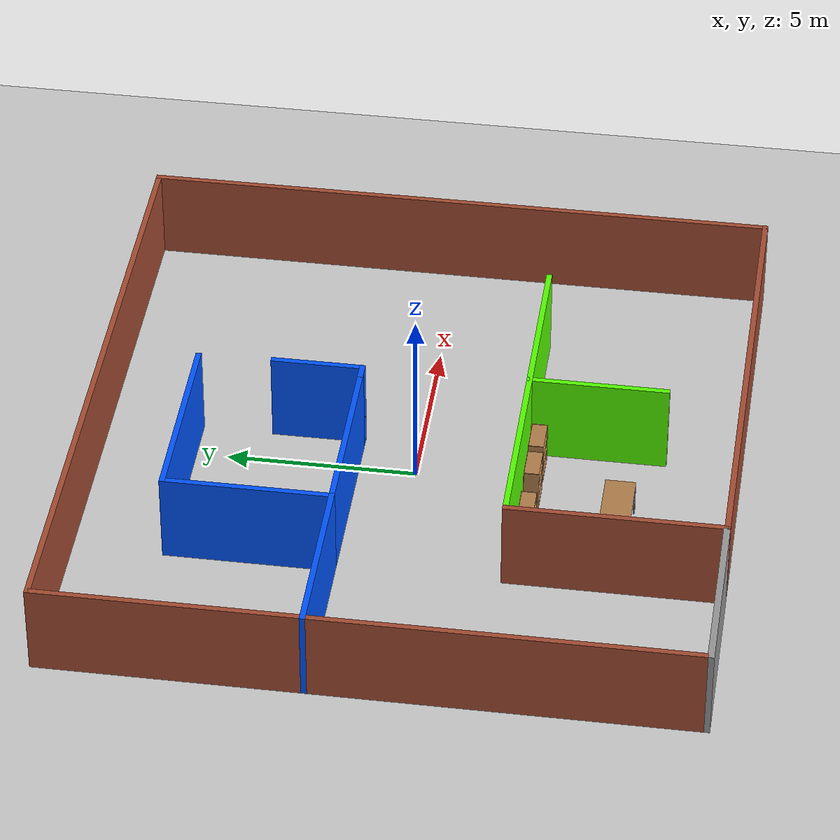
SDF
<sdf version="1.6">
 <world name="default">
  <model name="ground_plane">
   <static>1</static>
   <link name="link">
    <collision name="collision">
     <geometry><plane><normal>0 0 1</normal><size>100 100</size></plane></geometry>
     <surface><friction><ode><mu>100</mu><mu2>50</mu2></ode></friction></surface>
    </collision>
    <visual name="visual">
     <cast_shadows>0</cast_shadows>
     <geometry><plane><normal>0 0 1</normal><size>100 100</size></plane></geometry>
     <material>
      <script><uri>file://media/materials/scripts/gazebo.material</uri><name>Gazebo/Grey</name></script>
     </material>
    </visual>
   </link>
  </model>
  <model name="my_building">
   <pose>0.06133 -0.00347 0 0 -0 0</pose>
   <link name="Door_1">
    <collision name="Door_1_Collision">
     <geometry><box><size>4.8 0.17 2.5</size></box></geometry>
     <pose>0 0 1.25 0 -0 0</pose>
    </collision>
    <visual name="Door_1_Visual">
     <pose>0 0 1.25 0 -0 0</pose>
     <geometry><box><size>4.8 0.17 2.5</size></box></geometry>
     <material>
      <script><uri>file://media/materials/scripts/gazebo.material</uri><name>Gazebo/Grey</name></script>
     </material>
    </visual>
    <pose>-6.34787 -8.415 0 0 -0 0</pose>
   </link>
   <link name="Wall_13">
    <collision name="Wall_13_Collision">
     <geometry><box><size>4.75 0.15 2.5</size></box></geometry>
     <pose>0 0 1.25 0 -0 0</pose>
    </collision>
    <visual name="Wall_13_Visual">
     <pose>0 0 1.25 0 -0 0</pose>
     <geometry><box><size>4.75 0.15 2.5</size></box></geometry>
     <material>
      <script><uri>file://media/materials/scripts/gazebo.material</uri><name>Gazebo/Grey</name></script>
      <ambient>0 0.333333 1 1</ambient>
     </material>
     <meta><layer>0</layer></meta>
    </visual>
    <pose>-6.375 1.575 0 0 -0 3.14159</pose>
   </link>
   <link name="Wall_14">
    <collision name="Wall_14_Collision">
     <geometry><box><size>7 0.15 2.5</size></box></geometry>
     <pose>0 0 1.25 0 -0 0</pose>
    </collision>
    <visual name="Wall_14_Visual">
     <pose>0 0 1.25 0 -0 0</pose>
     <geometry><box><size>7 0.15 2.5</size></box></geometry>
     <material>
      <script><uri>file://media/materials/scripts/gazebo.material</uri><name>Gazebo/Bricks</name></script>
      <ambient>1 1 1 1</ambient>
     </material>
     <meta><layer>0</layer></meta>
    </visual>
    <pose>-8.675 5 0 0 -0 1.5708</pose>
   </link>
   <link name="Wall_15">
    <collision name="Wall_15_Collision">
     <geometry><box><size>17.5 0.15 2.5</size></box></geometry>
     <pose>0 0 1.25 0 -0 0</pose>
    </collision>
    <visual name="Wall_15_Visual">
     <pose>0 0 1.25 0 -0 0</pose>
     <geometry><box><size>17.5 0.15 2.5</size></box></geometry>
     <material>
      <script><uri>file://media/materials/scripts/gazebo.material</uri><name>Gazebo/Bricks</name></script>
      <ambient>1 1 1 1</ambient>
     </material>
     <meta><layer>0</layer></meta>
    </visual>
    <pose>0 8.425 0 0 -0 0</pose>
   </link>
   <link name="Wall_21">
    <collision name="Wall_21_Collision">
     <geometry><box><size>17 0.15 2.5</size></box></geometry>
     <pose>0 0 1.25 0 -0 0</pose>
    </collision>
    <visual name="Wall_21_Visual">
     <pose>0 0 1.25 0 -0 0</pose>
     <geometry><box><size>17 0.15 2.5</size></box></geometry>
     <material>
      <script><uri>file://media/materials/scripts/gazebo.material</uri><name>Gazebo/Bricks</name></script>
      <ambient>1 1 1 1</ambient>
     </material>
     <meta><layer>0</layer></meta>
    </visual>
    <pose>8.675 0 0 0 0 -1.5708</pose>
   </link>
   <link name="Wall_24">
    <collision name="Wall_24_Collision">
     <geometry><box><size>12.75 0.15 2.5</size></box></geometry>
     <pose>0 0 1.25 0 -0 0</pose>
    </collision>
    <visual name="Wall_24_Visual">
     <pose>0 0 1.25 0 -0 0</pose>
     <geometry><box><size>12.75 0.15 2.5</size></box></geometry>
     <material>
      <script><uri>file://media/materials/scripts/gazebo.material</uri><name>Gazebo/Bricks</name></script>
      <ambient>1 1 1 1</ambient>
     </material>
     <meta><layer>0</layer></meta>
    </visual>
    <pose>2.375 -8.425 0 0 -0 3.14159</pose>
   </link>
   <link name="Wall_25">
    <collision name="Wall_25_Collision">
     <geometry><box><size>5.75 0.15 2.5</size></box></geometry>
     <pose>0 0 1.25 0 -0 0</pose>
    </collision>
    <visual name="Wall_25_Visual">
     <pose>0 0 1.25 0 -0 0</pose>
     <geometry><box><size>5.75 0.15 2.5</size></box></geometry>
     <material>
      <script><uri>file://media/materials/scripts/gazebo.material</uri><name>Gazebo/Bricks</name></script>
      <ambient>1 1 1 1</ambient>
     </material>
     <meta><layer>0</layer></meta>
    </visual>
    <pose>-3.925 -5.625 0 0 -0 1.5708</pose>
   </link>
   <link name="Wall_26">
    <collision name="Wall_26_Collision">
     <geometry><box><size>9.75 0.15 2.5</size></box></geometry>
     <pose>0 0 1.25 0 -0 0</pose>
    </collision>
    <visual name="Wall_26_Visual">
     <pose>0 0 1.25 0 -0 0</pose>
     <geometry><box><size>9.75 0.15 2.5</size></box></geometry>
     <material>
      <script><uri>file://media/materials/scripts/gazebo.material</uri><name>Gazebo/Grey</name></script>
      <ambient>0.333333 1 0 1</ambient>
     </material>
     <meta><layer>0</layer></meta>
    </visual>
    <pose>0.875 -2.825 0 0 -0 0</pose>
   </link>
   <link name="Wall_30">
    <collision name="Wall_30_Collision">
     <geometry><box><size>4.5 0.15 2.5</size></box></geometry>
     <pose>0 0 1.25 0 -0 0</pose>
    </collision>
    <visual name="Wall_30_Visual">
     <pose>0 0 1.25 0 -0 0</pose>
     <geometry><box><size>4.5 0.15 2.5</size></box></geometry>
     <material>
      <script><uri>file://media/materials/scripts/gazebo.material</uri><name>Gazebo/Grey</name></script>
      <ambient>0 0.333333 1 1</ambient>
     </material>
     <meta><layer>0</layer></meta>
    </visual>
    <pose>-4.075 3.75 0 0 -0 1.5708</pose>
   </link>
   <link name="Wall_31">
    <collision name="Wall_31_Collision">
     <geometry><box><size>5.25 0.15 2.5</size></box></geometry>
     <pose>0 0 1.25 0 -0 0</pose>
    </collision>
    <visual name="Wall_31_Visual">
     <pose>0 0 1.25 0 -0 0</pose>
     <geometry><box><size>5.25 0.15 2.5</size></box></geometry>
     <material>
      <script><uri>file://media/materials/scripts/gazebo.material</uri><name>Gazebo/Grey</name></script>
      <ambient>0 0.333333 1 1</ambient>
     </material>
     <meta><layer>0</layer></meta>
    </visual>
    <pose>-1.525 5.925 0 0 -0 0</pose>
   </link>
   <link name="Wall_33">
    <collision name="Wall_33_Collision">
     <geometry><box><size>5 0.15 2.5</size></box></geometry>
     <pose>0 0 1.25 0 -0 0</pose>
    </collision>
    <visual name="Wall_33_Visual">
     <pose>0 0 1.25 0 -0 0</pose>
     <geometry><box><size>5 0.15 2.5</size></box></geometry>
     <material>
      <script><uri>file://media/materials/scripts/gazebo.material</uri><name>Gazebo/Grey</name></script>
      <ambient>0 0.333333 1 1</ambient>
     </material>
     <meta><layer>0</layer></meta>
    </visual>
    <pose>-1.65 1.575 0 0 -0 0</pose>
   </link>
   <link name="Wall_34">
    <collision name="Wall_34_Collision">
     <geometry><box><size>0.5 0.15 2.5</size></box></geometry>
     <pose>0 0 1.25 0 -0 0</pose>
    </collision>
    <visual name="Wall_34_Visual">
     <pose>0 0 1.25 0 -0 0</pose>
     <geometry><box><size>0.5 0.15 2.5</size></box></geometry>
     <material>
      <script><uri>file://media/materials/scripts/gazebo.material</uri><name>Gazebo/Grey</name></script>
      <ambient>0 0.333333 1 1</ambient>
     </material>
     <meta><layer>0</layer></meta>
    </visual>
    <pose>0.95 1.575 0 0 -0 0</pose>
   </link>
   <link name="Wall_35">
    <collision name="Wall_35_Collision">
     <geometry><box><size>2.5 0.15 2.5</size></box></geometry>
     <pose>0 0 1.25 0 -0 0</pose>
    </collision>
    <visual name="Wall_35_Visual">
     <pose>0 0 1.25 0 -0 0</pose>
     <geometry><box><size>2.5 0.15 2.5</size></box></geometry>
     <material>
      <script><uri>file://media/materials/scripts/gazebo.material</uri><name>Gazebo/Grey</name></script>
      <ambient>0 0.333333 1 1</ambient>
     </material>
     <meta><layer>0</layer></meta>
    </visual>
    <pose>1.125 2.75 0 0 -0 1.5708</pose>
   </link>
   <link name="Wall_37">
    <collision name="Wall_37_Collision">
     <geometry><box><size>10 0.15 2.5</size></box></geometry>
     <pose>0 0 1.25 0 -0 0</pose>
    </collision>
    <visual name="Wall_37_Visual">
     <pose>0 0 1.25 0 -0 0</pose>
     <geometry><box><size>10 0.15 2.5</size></box></geometry>
     <material>
      <script><uri>file://media/materials/scripts/gazebo.material</uri><name>Gazebo/Bricks</name></script>
      <ambient>1 1 1 1</ambient>
     </material>
     <meta><layer>0</layer></meta>
    </visual>
    <pose>-8.675 -3.35 0 0 0 -1.5708</pose>
   </link>
   <link name="Wall_39">
    <collision name="Wall_39_Collision">
     <geometry><box><size>3.75 0.15 2.5</size></box></geometry>
     <pose>0 0 1.25 0 -0 0</pose>
    </collision>
    <visual name="Wall_39_Visual">
     <pose>0 0 1.25 0 -0 0</pose>
     <geometry><box><size>3.75 0.15 2.5</size></box></geometry>
     <material>
      <script><uri>file://media/materials/scripts/gazebo.material</uri><name>Gazebo/Grey</name></script>
      <ambient>0.333333 1 0 1</ambient>
     </material>
     <meta><layer>0</layer></meta>
    </visual>
    <pose>1.24076 -4.62607 0 0 0 -1.5708</pose>
   </link>
   <static>1</static>
  </model>
  <model name="bookshelf">
   <static>1</static>
   <link name="link">
    <inertial><mass>1</mass></inertial>
    <collision name="back">
     <pose>0 0.005 0.6 0 -0 0</pose>
     <geometry><box><size>0.9 0.01 1.2</size></box></geometry>
    </collision>
    <visual name="visual1">
     <pose>0 0.005 0.6 0 -0 0</pose>
     <geometry><box><size>0.9 0.01 1.2</size></box></geometry>
     <material>
      <script><uri>file://media/materials/scripts/gazebo.material</uri><name>Gazebo/Wood</name></script>
     </material>
    </visual>
    <collision name="left_side">
     <pose>0.45 -0.195 0.6 0 -0 0</pose>
     <geometry><box><size>0.02 0.4 1.2</size></box></geometry>
    </collision>
    <visual name="visual2">
     <pose>0.45 -0.195 0.6 0 -0 0</pose>
     <geometry><box><size>0.02 0.4 1.2</size></box></geometry>
     <material>
      <script><uri>file://media/materials/scripts/gazebo.material</uri><name>Gazebo/Wood</name></script>
     </material>
    </visual>
    <collision name="right_side">
     <pose>-0.45 -0.195 0.6 0 -0 0</pose>
     <geometry><box><size>0.02 0.4 1.2</size></box></geometry>
    </collision>
    <visual name="visual3">
     <pose>-0.45 -0.195 0.6 0 -0 0</pose>
     <geometry><box><size>0.02 0.4 1.2</size></box></geometry>
     <material>
      <script><uri>file://media/materials/scripts/gazebo.material</uri><name>Gazebo/Wood</name></script>
     </material>
    </visual>
    <collision name="bottom">
     <pose>0 -0.195 0.03 0 -0 0</pose>
     <geometry><box><size>0.88 0.4 0.06</size></box></geometry>
    </collision>
    <visual name="visual4">
     <pose>0 -0.195 0.03 0 -0 0</pose>
     <geometry><box><size>0.88 0.4 0.06</size></box></geometry>
     <material>
      <script><uri>file://media/materials/scripts/gazebo.material</uri><name>Gazebo/Wood</name></script>
     </material>
    </visual>
    <collision name="top">
     <pose>0 -0.195 1.19 0 -0 0</pose>
     <geometry><box><size>0.88 0.4 0.02</size></box></geometry>
    </collision>
    <visual name="visual5">
     <pose>0 -0.195 1.19 0 -0 0</pose>
     <geometry><box><size>0.88 0.4 0.02</size></box></geometry>
     <material>
      <script><uri>file://media/materials/scripts/gazebo.material</uri><name>Gazebo/Wood</name></script>
     </material>
    </visual>
    <collision name="low_shelf">
     <pose>0 -0.195 0.43 0 -0 0</pose>
     <geometry><box><size>0.88 0.4 0.02</size></box></geometry>
    </collision>
    <visual name="visual6">
     <pose>0 -0.195 0.43 0 -0 0</pose>
     <geometry><box><size>0.88 0.4 0.02</size></box></geometry>
     <material>
      <script><uri>file://media/materials/scripts/gazebo.material</uri><name>Gazebo/Wood</name></script>
     </material>
    </visual>
    <collision name="high_shelf">
     <pose>0 -0.195 0.8 0 -0 0</pose>
     <geometry><box><size>0.88 0.4 0.02</size></box></geometry>
    </collision>
    <visual name="visual7">
     <pose>0 -0.195 0.8 0 -0 0</pose>
     <geometry><box><size>0.88 0.4 0.02</size></box></geometry>
     <material>
      <script><uri>file://media/materials/scripts/gazebo.material</uri><name>Gazebo/Wood</name></script>
     </material>
    </visual>
   </link>
   <pose>-3.20385 -2.9972 0 0 -0 0</pose>
  </model>
  <model name="bookshelf_clone">
   <static>1</static>
   <link name="link">
    <inertial><mass>1</mass></inertial>
    <collision name="back">
     <pose>0 0.005 0.6 0 -0 0</pose>
     <geometry><box><size>0.9 0.01 1.2</size></box></geometry>
    </collision>
    <visual name="visual1">
     <pose>0 0.005 0.6 0 -0 0</pose>
     <geometry><box><size>0.9 0.01 1.2</size></box></geometry>
     <material>
      <script><uri>file://media/materials/scripts/gazebo.material</uri><name>Gazebo/Wood</name></script>
     </material>
    </visual>
    <collision name="left_side">
     <pose>0.45 -0.195 0.6 0 -0 0</pose>
     <geometry><box><size>0.02 0.4 1.2</size></box></geometry>
    </collision>
    <visual name="visual2">
     <pose>0.45 -0.195 0.6 0 -0 0</pose>
     <geometry><box><size>0.02 0.4 1.2</size></box></geometry>
     <material>
      <script><uri>file://media/materials/scripts/gazebo.material</uri><name>Gazebo/Wood</name></script>
     </material>
    </visual>
    <collision name="right_side">
     <pose>-0.45 -0.195 0.6 0 -0 0</pose>
     <geometry><box><size>0.02 0.4 1.2</size></box></geometry>
    </collision>
    <visual name="visual3">
     <pose>-0.45 -0.195 0.6 0 -0 0</pose>
     <geometry><box><size>0.02 0.4 1.2</size></box></geometry>
     <material>
      <script><uri>file://media/materials/scripts/gazebo.material</uri><name>Gazebo/Wood</name></script>
     </material>
    </visual>
    <collision name="bottom">
     <pose>0 -0.195 0.03 0 -0 0</pose>
     <geometry><box><size>0.88 0.4 0.06</size></box></geometry>
    </collision>
    <visual name="visual4">
     <pose>0 -0.195 0.03 0 -0 0</pose>
     <geometry><box><size>0.88 0.4 0.06</size></box></geometry>
     <material>
      <script><uri>file://media/materials/scripts/gazebo.material</uri><name>Gazebo/Wood</name></script>
     </material>
    </visual>
    <collision name="top">
     <pose>0 -0.195 1.19 0 -0 0</pose>
     <geometry><box><size>0.88 0.4 0.02</size></box></geometry>
    </collision>
    <visual name="visual5">
     <pose>0 -0.195 1.19 0 -0 0</pose>
     <geometry><box><size>0.88 0.4 0.02</size></box></geometry>
     <material>
      <script><uri>file://media/materials/scripts/gazebo.material</uri><name>Gazebo/Wood</name></script>
     </material>
    </visual>
    <collision name="low_shelf">
     <pose>0 -0.195 0.43 0 -0 0</pose>
     <geometry><box><size>0.88 0.4 0.02</size></box></geometry>
    </collision>
    <visual name="visual6">
     <pose>0 -0.195 0.43 0 -0 0</pose>
     <geometry><box><size>0.88 0.4 0.02</size></box></geometry>
     <material>
      <script><uri>file://media/materials/scripts/gazebo.material</uri><name>Gazebo/Wood</name></script>
     </material>
    </visual>
    <collision name="high_shelf">
     <pose>0 -0.195 0.8 0 -0 0</pose>
     <geometry><box><size>0.88 0.4 0.02</size></box></geometry>
    </collision>
    <visual name="visual7">
     <pose>0 -0.195 0.8 0 -0 0</pose>
     <geometry><box><size>0.88 0.4 0.02</size></box></geometry>
     <material>
      <script><uri>file://media/materials/scripts/gazebo.material</uri><name>Gazebo/Wood</name></script>
     </material>
    </visual>
   </link>
   <pose>-2.13806 -3.00313 0 0 -0 0</pose>
  </model>
  <model name="bookshelf_clone_0">
   <static>1</static>
   <link name="link">
    <inertial><mass>1</mass></inertial>
    <collision name="back">
     <pose>0 0.005 0.6 0 -0 0</pose>
     <geometry><box><size>0.9 0.01 1.2</size></box></geometry>
    </collision>
    <visual name="visual1">
     <pose>0 0.005 0.6 0 -0 0</pose>
     <geometry><box><size>0.9 0.01 1.2</size></box></geometry>
     <material>
      <script><uri>file://media/materials/scripts/gazebo.material</uri><name>Gazebo/Wood</name></script>
     </material>
    </visual>
    <collision name="left_side">
     <pose>0.45 -0.195 0.6 0 -0 0</pose>
     <geometry><box><size>0.02 0.4 1.2</size></box></geometry>
    </collision>
    <visual name="visual2">
     <pose>0.45 -0.195 0.6 0 -0 0</pose>
     <geometry><box><size>0.02 0.4 1.2</size></box></geometry>
     <material>
      <script><uri>file://media/materials/scripts/gazebo.material</uri><name>Gazebo/Wood</name></script>
     </material>
    </visual>
    <collision name="right_side">
     <pose>-0.45 -0.195 0.6 0 -0 0</pose>
     <geometry><box><size>0.02 0.4 1.2</size></box></geometry>
    </collision>
    <visual name="visual3">
     <pose>-0.45 -0.195 0.6 0 -0 0</pose>
     <geometry><box><size>0.02 0.4 1.2</size></box></geometry>
     <material>
      <script><uri>file://media/materials/scripts/gazebo.material</uri><name>Gazebo/Wood</name></script>
     </material>
    </visual>
    <collision name="bottom">
     <pose>0 -0.195 0.03 0 -0 0</pose>
     <geometry><box><size>0.88 0.4 0.06</size></box></geometry>
    </collision>
    <visual name="visual4">
     <pose>0 -0.195 0.03 0 -0 0</pose>
     <geometry><box><size>0.88 0.4 0.06</size></box></geometry>
     <material>
      <script><uri>file://media/materials/scripts/gazebo.material</uri><name>Gazebo/Wood</name></script>
     </material>
    </visual>
    <collision name="top">
     <pose>0 -0.195 1.19 0 -0 0</pose>
     <geometry><box><size>0.88 0.4 0.02</size></box></geometry>
    </collision>
    <visual name="visual5">
     <pose>0 -0.195 1.19 0 -0 0</pose>
     <geometry><box><size>0.88 0.4 0.02</size></box></geometry>
     <material>
      <script><uri>file://media/materials/scripts/gazebo.material</uri><name>Gazebo/Wood</name></script>
     </material>
    </visual>
    <collision name="low_shelf">
     <pose>0 -0.195 0.43 0 -0 0</pose>
     <geometry><box><size>0.88 0.4 0.02</size></box></geometry>
    </collision>
    <visual name="visual6">
     <pose>0 -0.195 0.43 0 -0 0</pose>
     <geometry><box><size>0.88 0.4 0.02</size></box></geometry>
     <material>
      <script><uri>file://media/materials/scripts/gazebo.material</uri><name>Gazebo/Wood</name></script>
     </material>
    </visual>
    <collision name="high_shelf">
     <pose>0 -0.195 0.8 0 -0 0</pose>
     <geometry><box><size>0.88 0.4 0.02</size></box></geometry>
    </collision>
    <visual name="visual7">
     <pose>0 -0.195 0.8 0 -0 0</pose>
     <geometry><box><size>0.88 0.4 0.02</size></box></geometry>
     <material>
      <script><uri>file://media/materials/scripts/gazebo.material</uri><name>Gazebo/Wood</name></script>
     </material>
    </visual>
   </link>
   <pose>0.597484 -2.96142 0 0 -0 0</pose>
  </model>
  <model name="bookshelf_clone_1">
   <static>1</static>
   <link name="link">
    <inertial><mass>1</mass></inertial>
    <collision name="back">
     <pose>0 0.005 0.6 0 -0 0</pose>
     <geometry><box><size>0.9 0.01 1.2</size></box></geometry>
    </collision>
    <visual name="visual1">
     <pose>0 0.005 0.6 0 -0 0</pose>
     <geometry><box><size>0.9 0.01 1.2</size></box></geometry>
     <material>
      <script><uri>file://media/materials/scripts/gazebo.material</uri><name>Gazebo/Wood</name></script>
     </material>
    </visual>
    <collision name="left_side">
     <pose>0.45 -0.195 0.6 0 -0 0</pose>
     <geometry><box><size>0.02 0.4 1.2</size></box></geometry>
    </collision>
    <visual name="visual2">
     <pose>0.45 -0.195 0.6 0 -0 0</pose>
     <geometry><box><size>0.02 0.4 1.2</size></box></geometry>
     <material>
      <script><uri>file://media/materials/scripts/gazebo.material</uri><name>Gazebo/Wood</name></script>
     </material>
    </visual>
    <collision name="right_side">
     <pose>-0.45 -0.195 0.6 0 -0 0</pose>
     <geometry><box><size>0.02 0.4 1.2</size></box></geometry>
    </collision>
    <visual name="visual3">
     <pose>-0.45 -0.195 0.6 0 -0 0</pose>
     <geometry><box><size>0.02 0.4 1.2</size></box></geometry>
     <material>
      <script><uri>file://media/materials/scripts/gazebo.material</uri><name>Gazebo/Wood</name></script>
     </material>
    </visual>
    <collision name="bottom">
     <pose>0 -0.195 0.03 0 -0 0</pose>
     <geometry><box><size>0.88 0.4 0.06</size></box></geometry>
    </collision>
    <visual name="visual4">
     <pose>0 -0.195 0.03 0 -0 0</pose>
     <geometry><box><size>0.88 0.4 0.06</size></box></geometry>
     <material>
      <script><uri>file://media/materials/scripts/gazebo.material</uri><name>Gazebo/Wood</name></script>
     </material>
    </visual>
    <collision name="top">
     <pose>0 -0.195 1.19 0 -0 0</pose>
     <geometry><box><size>0.88 0.4 0.02</size></box></geometry>
    </collision>
    <visual name="visual5">
     <pose>0 -0.195 1.19 0 -0 0</pose>
     <geometry><box><size>0.88 0.4 0.02</size></box></geometry>
     <material>
      <script><uri>file://media/materials/scripts/gazebo.material</uri><name>Gazebo/Wood</name></script>
     </material>
    </visual>
    <collision name="low_shelf">
     <pose>0 -0.195 0.43 0 -0 0</pose>
     <geometry><box><size>0.88 0.4 0.02</size></box></geometry>
    </collision>
    <visual name="visual6">
     <pose>0 -0.195 0.43 0 -0 0</pose>
     <geometry><box><size>0.88 0.4 0.02</size></box></geometry>
     <material>
      <script><uri>file://media/materials/scripts/gazebo.material</uri><name>Gazebo/Wood</name></script>
     </material>
    </visual>
    <collision name="high_shelf">
     <pose>0 -0.195 0.8 0 -0 0</pose>
     <geometry><box><size>0.88 0.4 0.02</size></box></geometry>
    </collision>
    <visual name="visual7">
     <pose>0 -0.195 0.8 0 -0 0</pose>
     <geometry><box><size>0.88 0.4 0.02</size></box></geometry>
     <material>
      <script><uri>file://media/materials/scripts/gazebo.material</uri><name>Gazebo/Wood</name></script>
     </material>
    </visual>
   </link>
   <pose>-0.5159 -2.97189 0 0 -0 0</pose>
  </model>
  <model name="table">
   <static>1</static>
   <link name="link">
    <collision name="surface">
     <pose>0 0 1 0 -0 0</pose>
     <geometry><box><size>1.5 0.8 0.03</size></box></geometry>
     <surface><friction><ode><mu>0.6</mu><mu2>0.6</mu2></ode></friction></surface>
    </collision>
    <visual name="visual1">
     <pose>0 0 1 0 -0 0</pose>
     <geometry><box><size>1.5 0.8 0.03</size></box></geometry>
     <material>
      <script><uri>file://media/materials/scripts/gazebo.material</uri><name>Gazebo/Wood</name></script>
     </material>
    </visual>
    <collision name="front_left_leg">
     <pose>0.68 0.38 0.5 0 -0 0</pose>
     <geometry><cylinder><radius>0.02</radius><length>1</length></cylinder></geometry>
    </collision>
    <visual name="front_left_leg">
     <pose>0.68 0.38 0.5 0 -0 0</pose>
     <geometry><cylinder><radius>0.02</radius><length>1</length></cylinder></geometry>
     <material>
      <script><uri>file://media/materials/scripts/gazebo.material</uri><name>Gazebo/Grey</name></script>
     </material>
    </visual>
    <collision name="front_right_leg">
     <pose>0.68 -0.38 0.5 0 -0 0</pose>
     <geometry><cylinder><radius>0.02</radius><length>1</length></cylinder></geometry>
    </collision>
    <visual name="front_right_leg">
     <pose>0.68 -0.38 0.5 0 -0 0</pose>
     <geometry><cylinder><radius>0.02</radius><length>1</length></cylinder></geometry>
     <material>
      <script><uri>file://media/materials/scripts/gazebo.material</uri><name>Gazebo/Grey</name></script>
     </material>
    </visual>
    <collision name="back_right_leg">
     <pose>-0.68 -0.38 0.5 0 -0 0</pose>
     <geometry><cylinder><radius>0.02</radius><length>1</length></cylinder></geometry>
    </collision>
    <visual name="back_right_leg">
     <pose>-0.68 -0.38 0.5 0 -0 0</pose>
     <geometry><cylinder><radius>0.02</radius><length>1</length></cylinder></geometry>
     <material>
      <script><uri>file://media/materials/scripts/gazebo.material</uri><name>Gazebo/Grey</name></script>
     </material>
    </visual>
    <collision name="back_left_leg">
     <pose>-0.68 0.38 0.5 0 -0 0</pose>
     <geometry><cylinder><radius>0.02</radius><length>1</length></cylinder></geometry>
    </collision>
    <visual name="back_left_leg">
     <pose>-0.68 0.38 0.5 0 -0 0</pose>
     <geometry><cylinder><radius>0.02</radius><length>1</length></cylinder></geometry>
     <material>
      <script><uri>file://media/materials/scripts/gazebo.material</uri><name>Gazebo/Grey</name></script>
     </material>
    </visual>
   </link>
   <pose>-1.4634 -5.47109 0 0 -0 0</pose>
  </model>
 </world>
</sdf>
